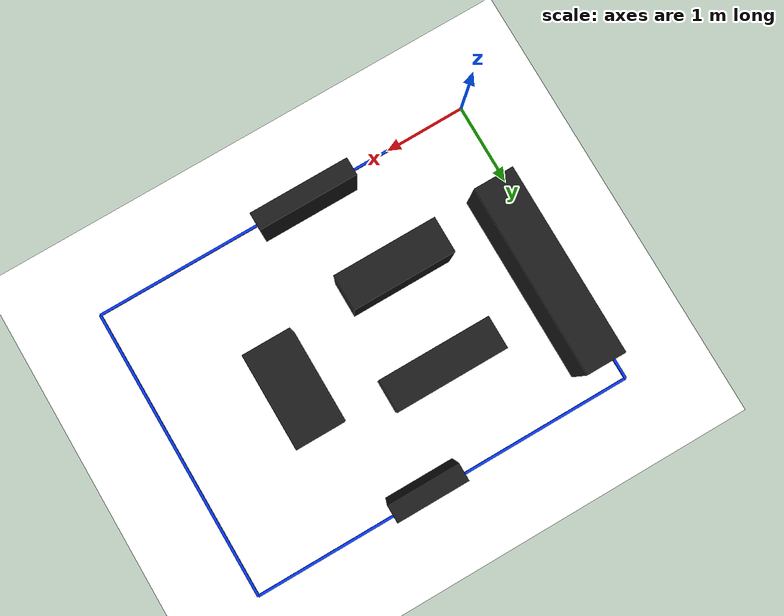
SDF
<?xml version="1.0" ?>
<sdf version="1.8">
  <model name="pista_octavo">
    <static>true</static>

    <!-- Textured map floor. Copy map_similarity_crop.png into:
         models/manual_pallet_track/materials/textures/map_similarity_crop.png -->
    <link name="map_floor">
      <pose>2.4200 1.8350 0.001 0 0 0</pose>
      <visual name="map_floor_visual">
        <geometry>
          <plane>
            <normal>0 0 1</normal>
            <size>6.8400 5.6700</size>
          </plane>
        </geometry>
        <material>
          <ambient>1 1 1 1</ambient>
          <diffuse>1 1 1 1</diffuse>
          <pbr>
            <metal>
              <albedo_map>model://pista_octavo/materials/textures/map_similarity_crop.png</albedo_map>
            </metal>
          </pbr>
          <script>
            <uri>model://pista_octavo/materials/scripts</uri>
            <uri>model://pista_octavo/materials/textures</uri>
            <name>pista_octavo/MapTexture</name>
          </script>
        </material>
        <cast_shadows>false</cast_shadows>
      </visual>
      <collision name="map_floor_collision">
        <geometry>
          <plane>
            <normal>0 0 1</normal>
            <size>6.8400 5.6700</size>
          </plane>
        </geometry>
      </collision>
    </link>

    <!-- Blue outline for the main 4.84 x 3.67 m rectangle, visual only. -->

    <link name="main_track_bottom_reference">
      <pose>2.4200 0.0000 0.0100 0 0 0</pose>
      <visual name="main_track_bottom_reference_visual">
        <geometry>
          <box><size>4.8400 0.0300 0.0200</size></box>
        </geometry>
        <material>
          <ambient>0 0.2 1 1</ambient>
          <diffuse>0 0.2 1 1</diffuse>
        </material>
      </visual>
      <collision name="main_track_bottom_reference_collision">
        <geometry>
          <box><size>4.8400 0.0300 0.0200</size></box>
        </geometry>
      </collision>
    </link>

    <link name="main_track_top_reference">
      <pose>2.4200 3.6700 0.0100 0 0 0</pose>
      <visual name="main_track_top_reference_visual">
        <geometry>
          <box><size>4.8400 0.0300 0.0200</size></box>
        </geometry>
        <material>
          <ambient>0 0.2 1 1</ambient>
          <diffuse>0 0.2 1 1</diffuse>
        </material>
      </visual>
      <collision name="main_track_top_reference_collision">
        <geometry>
          <box><size>4.8400 0.0300 0.0200</size></box>
        </geometry>
      </collision>
    </link>

    <link name="main_track_left_reference">
      <pose>0.0000 1.8350 0.0100 0 0 0</pose>
      <visual name="main_track_left_reference_visual">
        <geometry>
          <box><size>0.0300 3.6700 0.0200</size></box>
        </geometry>
        <material>
          <ambient>0 0.2 1 1</ambient>
          <diffuse>0 0.2 1 1</diffuse>
        </material>
      </visual>
      <collision name="main_track_left_reference_collision">
        <geometry>
          <box><size>0.0300 3.6700 0.0200</size></box>
        </geometry>
      </collision>
    </link>

    <link name="main_track_right_reference">
      <pose>4.8400 1.8350 0.0100 0 0 0</pose>
      <visual name="main_track_right_reference_visual">
        <geometry>
          <box><size>0.0300 3.6700 0.0200</size></box>
        </geometry>
        <material>
          <ambient>0 0.2 1 1</ambient>
          <diffuse>0 0.2 1 1</diffuse>
        </material>
      </visual>
      <collision name="main_track_right_reference_collision">
        <geometry>
          <box><size>0.0300 3.6700 0.0200</size></box>
        </geometry>
      </collision>
    </link>

    <!-- Manual obstacle boxes generated from manual_obstacles.yaml. -->

    <link name="manual_obstacle_0">
      <pose>0.2750 2.1750 0.3000 0 0 0</pose>
      <visual name="manual_obstacle_0_visual">
        <geometry>
          <box><size>0.4900 2.3500 0.6000</size></box>
        </geometry>
        <material>
          <ambient>0.1 0.1 0.1 1</ambient>
          <diffuse>0.1 0.1 0.1 1</diffuse>
        </material>
      </visual>
      <collision name="manual_obstacle_0_collision">
        <geometry>
          <box><size>0.4900 2.3500 0.6000</size></box>
        </geometry>
      </collision>
    </link>
    <link name="manual_obstacle_1">
      <pose>1.7850 2.4700 0.3000 0 0 0</pose>
      <visual name="manual_obstacle_1_visual">
        <geometry>
          <box><size>1.3700 0.4000 0.6000</size></box>
        </geometry>
        <material>
          <ambient>0.1 0.1 0.1 1</ambient>
          <diffuse>0.1 0.1 0.1 1</diffuse>
        </material>
      </visual>
      <collision name="manual_obstacle_1_collision">
        <geometry>
          <box><size>1.3700 0.4000 0.6000</size></box>
        </geometry>
      </collision>
    </link>
    <link name="manual_obstacle_2">
      <pose>1.6850 1.2700 0.3000 0 0 0</pose>
      <visual name="manual_obstacle_2_visual">
        <geometry>
          <box><size>1.2700 0.4400 0.6000</size></box>
        </geometry>
        <material>
          <ambient>0.1 0.1 0.1 1</ambient>
          <diffuse>0.1 0.1 0.1 1</diffuse>
        </material>
      </visual>
      <collision name="manual_obstacle_2_collision">
        <geometry>
          <box><size>1.2700 0.4400 0.6000</size></box>
        </geometry>
      </collision>
    </link>
    <link name="manual_obstacle_3">
      <pose>3.3050 1.8850 0.3000 0 0 0</pose>
      <visual name="manual_obstacle_3_visual">
        <geometry>
          <box><size>0.5900 1.1700 0.6000</size></box>
        </geometry>
        <material>
          <ambient>0.1 0.1 0.1 1</ambient>
          <diffuse>0.1 0.1 0.1 1</diffuse>
        </material>
      </visual>
      <collision name="manual_obstacle_3_collision">
        <geometry>
          <box><size>0.5900 1.1700 0.6000</size></box>
        </geometry>
      </collision>
    </link>
    <link name="manual_obstacle_4">
      <pose>2.6200 3.5600 0.3000 0 0 0</pose>
      <visual name="manual_obstacle_4_visual">
        <geometry>
          <box><size>0.8800 0.2200 0.6000</size></box>
        </geometry>
        <material>
          <ambient>0.1 0.1 0.1 1</ambient>
          <diffuse>0.1 0.1 0.1 1</diffuse>
        </material>
      </visual>
      <collision name="manual_obstacle_4_collision">
        <geometry>
          <box><size>0.8800 0.2200 0.6000</size></box>
        </geometry>
      </collision>
    </link>
    <link name="manual_obstacle_5">
      <pose>2.1500 0.1100 0.3000 0 0 0</pose>
      <visual name="manual_obstacle_5_visual">
        <geometry>
          <box><size>1.2200 0.2200 0.6000</size></box>
        </geometry>
        <material>
          <ambient>0.1 0.1 0.1 1</ambient>
          <diffuse>0.1 0.1 0.1 1</diffuse>
        </material>
      </visual>
      <collision name="manual_obstacle_5_collision">
        <geometry>
          <box><size>1.2200 0.2200 0.6000</size></box>
        </geometry>
      </collision>
    </link>
  </model>
</sdf>
